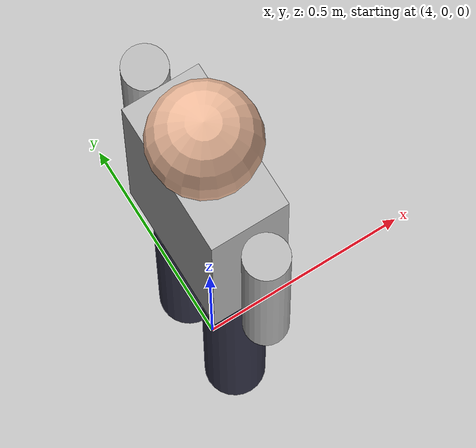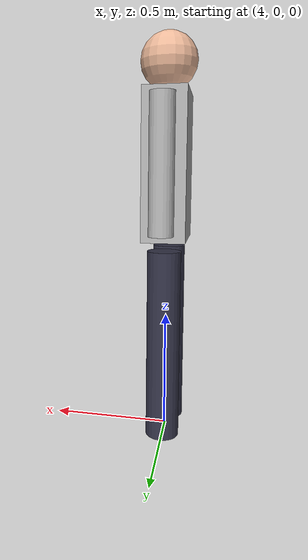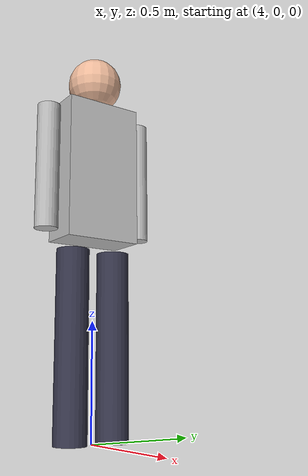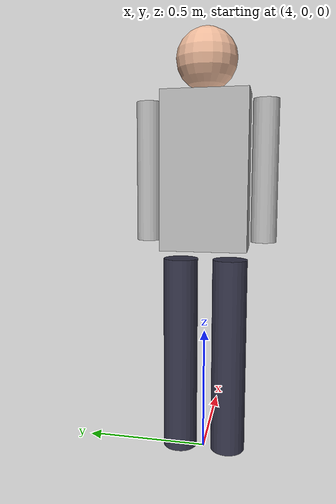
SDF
<?xml version="1.0" ?>
<sdf version="1.6">
  <model name="pedestrian_1">
    <static>false</static>
    <pose>4.0 0.0 0 0 0 0</pose>
    <link name="base">
      <gravity>0</gravity>
      <inertial>
        <mass>60.0</mass>
        <inertia><ixx>16.0</ixx><ixy>0</ixy><ixz>0</ixz><iyy>16.0</iyy><iyz>0</iyz><izz>1.2</izz></inertia>
      </inertial>
      <!-- LiDAR 감지용 단일 충돌체 (사람 폭 근사) -->
      <collision name="c">
        <pose>0 0 0.85 0 0 0</pose>
        <geometry><cylinder><radius>0.22</radius><length>1.7</length></cylinder></geometry>
      </collision>
      <!-- 다리 2 -->
      <visual name="leg_l">
        <pose>0 0.10 0.4 0 0 0</pose>
        <geometry><cylinder><radius>0.07</radius><length>0.8</length></cylinder></geometry>
        <material><ambient>0.15 0.15 0.2 1</ambient><diffuse>0.2 0.2 0.28 1</diffuse></material>
      </visual>
      <visual name="leg_r">
        <pose>0 -0.10 0.4 0 0 0</pose>
        <geometry><cylinder><radius>0.07</radius><length>0.8</length></cylinder></geometry>
        <material><ambient>0.15 0.15 0.2 1</ambient><diffuse>0.2 0.2 0.28 1</diffuse></material>
      </visual>
      <!-- 몸통 (정면 +x, 어깨폭 y) -->
      <visual name="torso">
        <pose>0 0 1.15 0 0 0</pose>
        <geometry><box><size>0.18 0.34 0.62</size></box></geometry>
        <material><ambient>__SHIRT__</ambient><diffuse>__SHIRT__</diffuse></material>
      </visual>
      <visual name="arm_l">
        <pose>0 0.23 1.15 0 0 0</pose>
        <geometry><cylinder><radius>0.05</radius><length>0.55</length></cylinder></geometry>
        <material><ambient>__SHIRT__</ambient><diffuse>__SHIRT__</diffuse></material>
      </visual>
      <visual name="arm_r">
        <pose>0 -0.23 1.15 0 0 0</pose>
        <geometry><cylinder><radius>0.05</radius><length>0.55</length></cylinder></geometry>
        <material><ambient>__SHIRT__</ambient><diffuse>__SHIRT__</diffuse></material>
      </visual>
      <!-- 머리 -->
      <visual name="head">
        <pose>0 0 1.58 0 0 0</pose>
        <geometry><sphere><radius>0.12</radius></sphere></geometry>
        <material><ambient>0.8 0.62 0.5 1</ambient><diffuse>0.92 0.72 0.6 1</diffuse></material>
      </visual>
    </link>
  </model>
</sdf>
